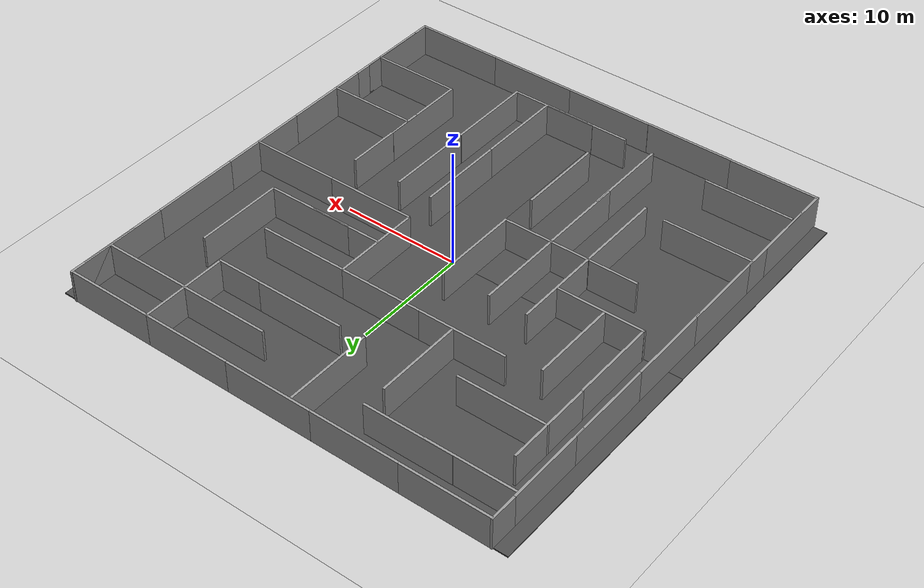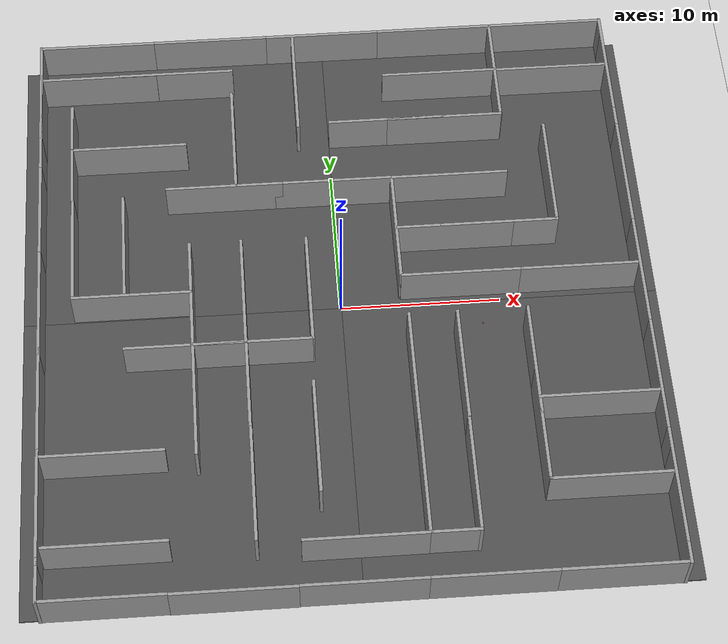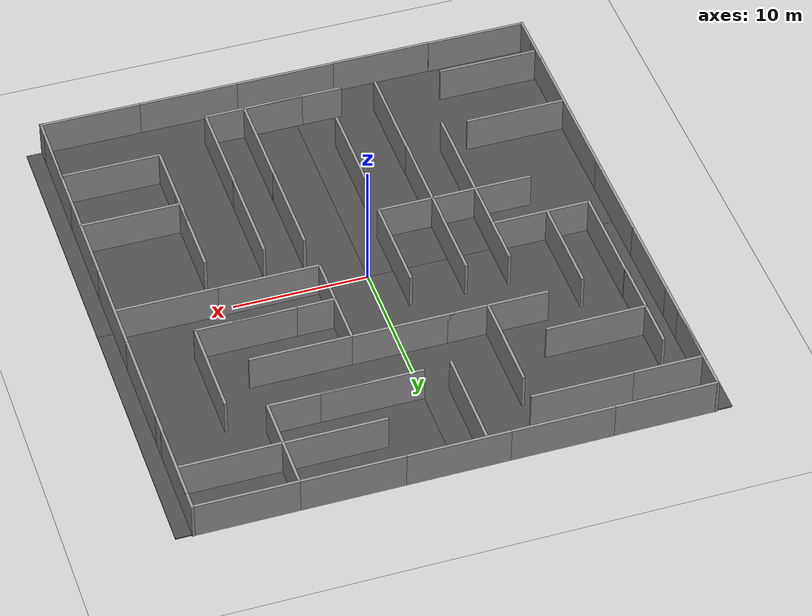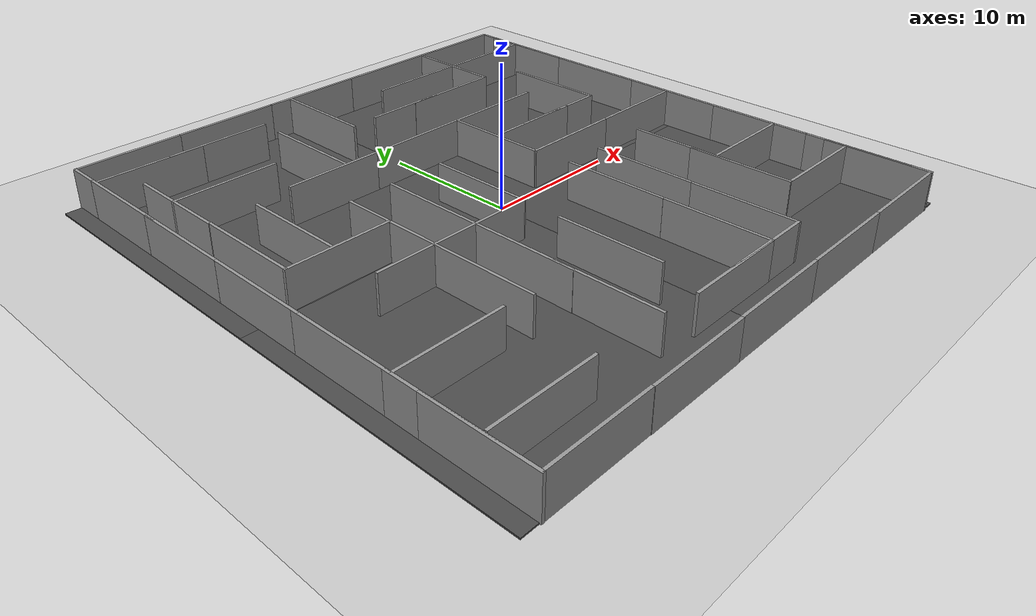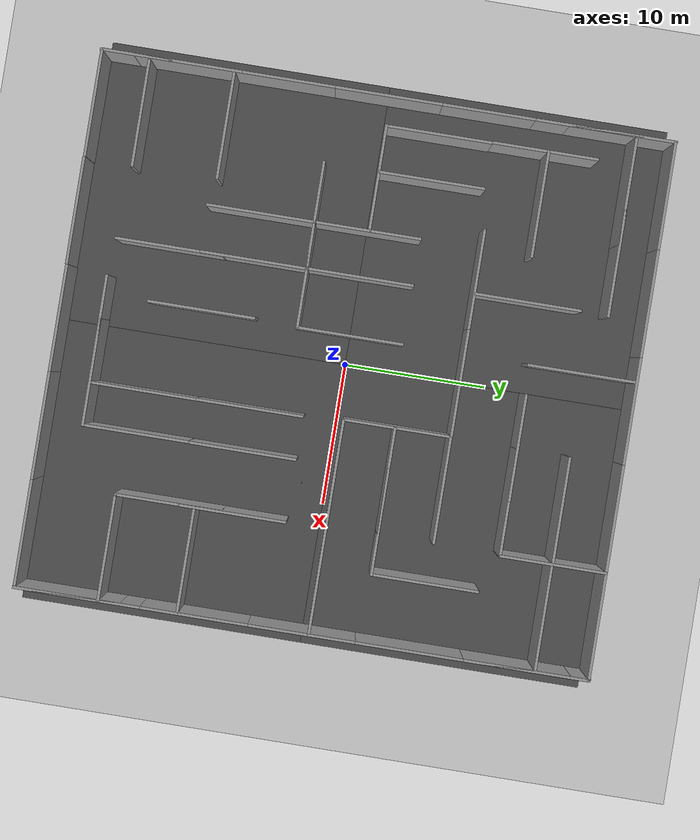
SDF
<sdf version="1.6">
 <world name="default">
  <light name="sun" type="directional">
   <pose>0 0 10 0 -0 0</pose>
   <diffuse>0.8 0.8 0.8 1</diffuse>
   <specular>0.2 0.2 0.2 1</specular>
   <attenuation>
    <range>1000</range>
    <constant>0.9</constant>
    <linear>0.01</linear>
    <quadratic>0.001</quadratic>
   </attenuation>
   <direction>-0.5 0.1 -0.9</direction>
  </light>
  <model name="ground_plane">
   <static>1</static>
   <link name="link">
    <collision name="collision">
     <geometry><plane><normal>0 0 1</normal><size>100 100</size></plane></geometry>
     <surface><friction><ode><mu>100</mu><mu2>50</mu2></ode></friction></surface>
    </collision>
    <visual name="visual">
     <cast_shadows>0</cast_shadows>
     <geometry><plane><normal>0 0 1</normal><size>100 100</size></plane></geometry>
     <material>
      <script><uri>file://media/materials/scripts/gazebo.material</uri><name>Gazebo/Grey</name></script>
     </material>
    </visual>
   </link>
  </model>
  <gravity>0 0 -9.8</gravity>
  <magnetic_field>6e-06 2.3e-05 -4.2e-05</magnetic_field>
  <atmosphere type="adiabatic"/>
  <physics name="default_physics" default="0" type="ode">
   <max_step_size>0.001</max_step_size>
   <real_time_factor>1</real_time_factor>
   <real_time_update_rate>1000</real_time_update_rate>
  </physics>
  <scene><ambient>0.4 0.4 0.4 1</ambient><background>0.7 0.7 0.7 1</background><shadows>1</shadows></scene>
  <audio><device>default</device></audio>
  <spherical_coordinates>
   <surface_model>EARTH_WGS84</surface_model>
   <latitude_deg>0</latitude_deg>
   <longitude_deg>0</longitude_deg>
   <elevation>0</elevation>
   <heading_deg>0</heading_deg>
  </spherical_coordinates>
  <model name="asphalt_plane">
   <static>1</static>
   <link name="link">
    <collision name="collision"><geometry><box><size>20 20 0.1</size></box></geometry></collision>
    <visual name="visual">
     <cast_shadows>0</cast_shadows>
     <geometry><box><size>20 20 0.1</size></box></geometry>
     <material>
      <script>
       <uri>model://asphalt_plane/materials/scripts</uri>
       <uri>model://asphalt_plane/materials/textures</uri>
       <name>vrc/asphalt</name>
      </script>
     </material>
    </visual>
   </link>
   <pose>10 -10 0 0 -0 0</pose>
  </model>
  <model name="asphalt_plane_clone">
   <static>1</static>
   <link name="link">
    <collision name="collision"><geometry><box><size>20 20 0.1</size></box></geometry></collision>
    <visual name="visual">
     <cast_shadows>0</cast_shadows>
     <geometry><box><size>20 20 0.1</size></box></geometry>
     <material>
      <script>
       <uri>model://asphalt_plane/materials/scripts</uri>
       <uri>model://asphalt_plane/materials/textures</uri>
       <name>vrc/asphalt</name>
      </script>
     </material>
    </visual>
   </link>
   <pose>10 10 0 0 -0 0</pose>
  </model>
  <model name="asphalt_plane_clone_0">
   <static>1</static>
   <link name="link">
    <collision name="collision"><geometry><box><size>20 20 0.1</size></box></geometry></collision>
    <visual name="visual">
     <cast_shadows>0</cast_shadows>
     <geometry><box><size>20 20 0.1</size></box></geometry>
     <material>
      <script>
       <uri>model://asphalt_plane/materials/scripts</uri>
       <uri>model://asphalt_plane/materials/textures</uri>
       <name>vrc/asphalt</name>
      </script>
     </material>
    </visual>
   </link>
   <pose>-10 10 0 0 -0 0</pose>
  </model>
  <model name="asphalt_plane_clone_1">
   <static>1</static>
   <link name="link">
    <collision name="collision"><geometry><box><size>20 20 0.1</size></box></geometry></collision>
    <visual name="visual">
     <cast_shadows>0</cast_shadows>
     <geometry><box><size>20 20 0.1</size></box></geometry>
     <material>
      <script>
       <uri>model://asphalt_plane/materials/scripts</uri>
       <uri>model://asphalt_plane/materials/textures</uri>
       <name>vrc/asphalt</name>
      </script>
     </material>
    </visual>
   </link>
   <pose>-10 -10 0 0 -0 0</pose>
  </model>
  <model name="grey_wall">
   <static>1</static>
   <link name="link">
    <pose>0 0 1.4 0 -0 0</pose>
    <collision name="collision"><geometry><box><size>7.5 0.2 2.8</size></box></geometry></collision>
    <visual name="visual">
     <cast_shadows>0</cast_shadows>
     <geometry><box><size>7.5 0.2 2.8</size></box></geometry>
     <material>
      <script>
       <uri>model://grey_wall/materials/scripts</uri>
       <uri>model://grey_wall/materials/textures</uri>
       <name>vrc/grey_wall</name>
      </script>
     </material>
    </visual>
   </link>
   <pose>0 20 0 0 -0 0</pose>
  </model>
  <model name="grey_wall_0">
   <static>1</static>
   <link name="link">
    <pose>0 0 1.4 0 -0 0</pose>
    <collision name="collision"><geometry><box><size>7.5 0.2 2.8</size></box></geometry></collision>
    <visual name="visual">
     <cast_shadows>0</cast_shadows>
     <geometry><box><size>7.5 0.2 2.8</size></box></geometry>
     <material>
      <script>
       <uri>model://grey_wall/materials/scripts</uri>
       <uri>model://grey_wall/materials/textures</uri>
       <name>vrc/grey_wall</name>
      </script>
     </material>
    </visual>
   </link>
   <pose>-7.5 20 0 0 -0 0</pose>
  </model>
  <model name="grey_wall_0_clone">
   <static>1</static>
   <link name="link">
    <pose>0 0 1.4 0 -0 0</pose>
    <collision name="collision"><geometry><box><size>7.5 0.2 2.8</size></box></geometry></collision>
    <visual name="visual">
     <cast_shadows>0</cast_shadows>
     <geometry><box><size>7.5 0.2 2.8</size></box></geometry>
     <material>
      <script>
       <uri>model://grey_wall/materials/scripts</uri>
       <uri>model://grey_wall/materials/textures</uri>
       <name>vrc/grey_wall</name>
      </script>
     </material>
    </visual>
   </link>
   <pose>-15 20 0 0 -0 0</pose>
  </model>
  <model name="grey_wall_0_clone_0">
   <static>1</static>
   <link name="link">
    <pose>0 0 1.4 0 -0 0</pose>
    <collision name="collision"><geometry><box><size>7.5 0.2 2.8</size></box></geometry></collision>
    <visual name="visual">
     <cast_shadows>0</cast_shadows>
     <geometry><box><size>7.5 0.2 2.8</size></box></geometry>
     <material>
      <script>
       <uri>model://grey_wall/materials/scripts</uri>
       <uri>model://grey_wall/materials/textures</uri>
       <name>vrc/grey_wall</name>
      </script>
     </material>
    </visual>
   </link>
   <pose>7.5 20 0 0 -0 0</pose>
  </model>
  <model name="grey_wall_0_clone_1">
   <static>1</static>
   <link name="link">
    <pose>0 0 1.4 0 -0 0</pose>
    <collision name="collision"><geometry><box><size>7.5 0.2 2.8</size></box></geometry></collision>
    <visual name="visual">
     <cast_shadows>0</cast_shadows>
     <geometry><box><size>7.5 0.2 2.8</size></box></geometry>
     <material>
      <script>
       <uri>model://grey_wall/materials/scripts</uri>
       <uri>model://grey_wall/materials/textures</uri>
       <name>vrc/grey_wall</name>
      </script>
     </material>
    </visual>
   </link>
   <pose>15 20 0 0 -0 0</pose>
  </model>
  <model name="grey_wall_0_clone_1_clone">
   <static>1</static>
   <link name="link">
    <pose>0 0 1.4 0 -0 0</pose>
    <collision name="collision"><geometry><box><size>7.5 0.2 2.8</size></box></geometry></collision>
    <visual name="visual">
     <cast_shadows>0</cast_shadows>
     <geometry><box><size>7.5 0.2 2.8</size></box></geometry>
     <material>
      <script>
       <uri>model://grey_wall/materials/scripts</uri>
       <uri>model://grey_wall/materials/textures</uri>
       <name>vrc/grey_wall</name>
      </script>
     </material>
    </visual>
   </link>
   <pose>0 -20 0 0 -0 0</pose>
  </model>
  <model name="grey_wall_0_clone_1_clone_clone">
   <static>1</static>
   <link name="link">
    <pose>0 0 1.4 0 -0 0</pose>
    <collision name="collision"><geometry><box><size>7.5 0.2 2.8</size></box></geometry></collision>
    <visual name="visual">
     <cast_shadows>0</cast_shadows>
     <geometry><box><size>7.5 0.2 2.8</size></box></geometry>
     <material>
      <script>
       <uri>model://grey_wall/materials/scripts</uri>
       <uri>model://grey_wall/materials/textures</uri>
       <name>vrc/grey_wall</name>
      </script>
     </material>
    </visual>
   </link>
   <pose>7.5 -20 0 0 -0 0</pose>
  </model>
  <model name="grey_wall_0_clone_1_clone_clone_0">
   <static>1</static>
   <link name="link">
    <pose>0 0 1.4 0 -0 0</pose>
    <collision name="collision"><geometry><box><size>7.5 0.2 2.8</size></box></geometry></collision>
    <visual name="visual">
     <cast_shadows>0</cast_shadows>
     <geometry><box><size>7.5 0.2 2.8</size></box></geometry>
     <material>
      <script>
       <uri>model://grey_wall/materials/scripts</uri>
       <uri>model://grey_wall/materials/textures</uri>
       <name>vrc/grey_wall</name>
      </script>
     </material>
    </visual>
   </link>
   <pose>15 -20 0 0 -0 0</pose>
  </model>
  <model name="grey_wall_0_clone_1_clone_clone_1">
   <static>1</static>
   <link name="link">
    <pose>0 0 1.4 0 -0 0</pose>
    <collision name="collision"><geometry><box><size>7.5 0.2 2.8</size></box></geometry></collision>
    <visual name="visual">
     <cast_shadows>0</cast_shadows>
     <geometry><box><size>7.5 0.2 2.8</size></box></geometry>
     <material>
      <script>
       <uri>model://grey_wall/materials/scripts</uri>
       <uri>model://grey_wall/materials/textures</uri>
       <name>vrc/grey_wall</name>
      </script>
     </material>
    </visual>
   </link>
   <pose>-7.5 -20.0279 0 0 -0 0</pose>
  </model>
  <model name="grey_wall_0_clone_1_clone_clone_2">
   <static>1</static>
   <link name="link">
    <pose>0 0 1.4 0 -0 0</pose>
    <collision name="collision"><geometry><box><size>7.5 0.2 2.8</size></box></geometry></collision>
    <visual name="visual">
     <cast_shadows>0</cast_shadows>
     <geometry><box><size>7.5 0.2 2.8</size></box></geometry>
     <material>
      <script>
       <uri>model://grey_wall/materials/scripts</uri>
       <uri>model://grey_wall/materials/textures</uri>
       <name>vrc/grey_wall</name>
      </script>
     </material>
    </visual>
   </link>
   <pose>-15 -20 0 0 -0 0</pose>
  </model>
  <model name="grey_wall_0_clone_1_clone_clone_3">
   <static>1</static>
   <link name="link">
    <pose>0 0 1.4 0 -0 0</pose>
    <collision name="collision"><geometry><box><size>7.5 0.2 2.8</size></box></geometry></collision>
    <visual name="visual">
     <cast_shadows>0</cast_shadows>
     <geometry><box><size>7.5 0.2 2.8</size></box></geometry>
     <material>
      <script>
       <uri>model://grey_wall/materials/scripts</uri>
       <uri>model://grey_wall/materials/textures</uri>
       <name>vrc/grey_wall</name>
      </script>
     </material>
    </visual>
   </link>
   <pose>-18.75 0 0 0 -0 1.5708</pose>
  </model>
  <model name="grey_wall_0_clone_1_clone_clone_3_clone">
   <static>1</static>
   <link name="link">
    <pose>0 0 1.4 0 -0 0</pose>
    <collision name="collision"><geometry><box><size>7.5 0.2 2.8</size></box></geometry></collision>
    <visual name="visual">
     <cast_shadows>0</cast_shadows>
     <geometry><box><size>7.5 0.2 2.8</size></box></geometry>
     <material>
      <script>
       <uri>model://grey_wall/materials/scripts</uri>
       <uri>model://grey_wall/materials/textures</uri>
       <name>vrc/grey_wall</name>
      </script>
     </material>
    </visual>
   </link>
   <pose>-18.75 -7 0 0 -0 1.5708</pose>
  </model>
  <model name="grey_wall_0_clone_1_clone_clone_3_clone_0">
   <static>1</static>
   <link name="link">
    <pose>0 0 1.4 0 -0 0</pose>
    <collision name="collision"><geometry><box><size>7.5 0.2 2.8</size></box></geometry></collision>
    <visual name="visual">
     <cast_shadows>0</cast_shadows>
     <geometry><box><size>7.5 0.2 2.8</size></box></geometry>
     <material>
      <script>
       <uri>model://grey_wall/materials/scripts</uri>
       <uri>model://grey_wall/materials/textures</uri>
       <name>vrc/grey_wall</name>
      </script>
     </material>
    </visual>
   </link>
   <pose>-18.75 -14 0 0 -0 1.5708</pose>
  </model>
  <model name="grey_wall_0_clone_1_clone_clone_3_clone_1">
   <static>1</static>
   <link name="link">
    <pose>0 0 1.4 0 -0 0</pose>
    <collision name="collision"><geometry><box><size>7.5 0.2 2.8</size></box></geometry></collision>
    <visual name="visual">
     <cast_shadows>0</cast_shadows>
     <geometry><box><size>7.5 0.2 2.8</size></box></geometry>
     <material>
      <script>
       <uri>model://grey_wall/materials/scripts</uri>
       <uri>model://grey_wall/materials/textures</uri>
       <name>vrc/grey_wall</name>
      </script>
     </material>
    </visual>
   </link>
   <pose>-18.7504 7.41604 0 0 -0 1.5708</pose>
  </model>
  <model name="grey_wall_0_clone_1_clone_clone_3_clone_2">
   <static>1</static>
   <link name="link">
    <pose>0 0 1.4 0 -0 0</pose>
    <collision name="collision"><geometry><box><size>7.5 0.2 2.8</size></box></geometry></collision>
    <visual name="visual">
     <cast_shadows>0</cast_shadows>
     <geometry><box><size>7.5 0.2 2.8</size></box></geometry>
     <material>
      <script>
       <uri>model://grey_wall/materials/scripts</uri>
       <uri>model://grey_wall/materials/textures</uri>
       <name>vrc/grey_wall</name>
      </script>
     </material>
    </visual>
   </link>
   <pose>-18.75 14 0 0 -0 1.5708</pose>
  </model>
  <model name="grey_wall_0_clone_1_clone_clone_3_clone_0_clone">
   <static>1</static>
   <link name="link">
    <pose>0 0 1.4 0 -0 0</pose>
    <collision name="collision"><geometry><box><size>7.5 0.2 2.8</size></box></geometry></collision>
    <visual name="visual">
     <cast_shadows>0</cast_shadows>
     <geometry><box><size>7.5 0.2 2.8</size></box></geometry>
     <material>
      <script>
       <uri>model://grey_wall/materials/scripts</uri>
       <uri>model://grey_wall/materials/textures</uri>
       <name>vrc/grey_wall</name>
      </script>
     </material>
    </visual>
   </link>
   <pose>-18.75 -16.375 0 0 -0 1.5708</pose>
  </model>
  <model name="grey_wall_0_clone_1_clone_clone_3_clone_2_clone">
   <static>1</static>
   <link name="link">
    <pose>0 0 1.4 0 -0 0</pose>
    <collision name="collision"><geometry><box><size>7.5 0.2 2.8</size></box></geometry></collision>
    <visual name="visual">
     <cast_shadows>0</cast_shadows>
     <geometry><box><size>7.5 0.2 2.8</size></box></geometry>
     <material>
      <script>
       <uri>model://grey_wall/materials/scripts</uri>
       <uri>model://grey_wall/materials/textures</uri>
       <name>vrc/grey_wall</name>
      </script>
     </material>
    </visual>
   </link>
   <pose>-18.75 16.375 0 0 -0 1.5708</pose>
  </model>
  <light name="user_point_light_0" type="point">
   <pose>0.377107 0.590548 1 0 -0 0</pose>
   <diffuse>0.5 0.5 0.5 1</diffuse>
   <specular>0.1 0.1 0.1 1</specular>
   <attenuation>
    <range>20</range>
    <constant>0.5</constant>
    <linear>0.01</linear>
    <quadratic>0.001</quadratic>
   </attenuation>
   <cast_shadows>0</cast_shadows>
   <direction>0 0 -1</direction>
  </light>
  <model name="grey_wall_0_clone_1_clone_clone_3_clone_2_clone_clone">
   <static>1</static>
   <link name="link">
    <pose>0 0 1.4 0 -0 0</pose>
    <collision name="collision"><geometry><box><size>7.5 0.2 2.8</size></box></geometry></collision>
    <visual name="visual">
     <cast_shadows>0</cast_shadows>
     <geometry><box><size>7.5 0.2 2.8</size></box></geometry>
     <material>
      <script>
       <uri>model://grey_wall/materials/scripts</uri>
       <uri>model://grey_wall/materials/textures</uri>
       <name>vrc/grey_wall</name>
      </script>
     </material>
    </visual>
   </link>
   <pose>18.75 16.375 0 0 -0 1.5708</pose>
  </model>
  <model name="grey_wall_0_clone_1_clone_clone_3_clone_2_clone_clone_0">
   <static>1</static>
   <link name="link">
    <pose>0 0 1.4 0 -0 0</pose>
    <collision name="collision"><geometry><box><size>7.5 0.2 2.8</size></box></geometry></collision>
    <visual name="visual">
     <cast_shadows>0</cast_shadows>
     <geometry><box><size>7.5 0.2 2.8</size></box></geometry>
     <material>
      <script>
       <uri>model://grey_wall/materials/scripts</uri>
       <uri>model://grey_wall/materials/textures</uri>
       <name>vrc/grey_wall</name>
      </script>
     </material>
    </visual>
   </link>
   <pose>18.75 0 0 0 -0 1.5708</pose>
  </model>
  <model name="grey_wall_0_clone_1_clone_clone_3_clone_2_clone_clone_1">
   <static>1</static>
   <link name="link">
    <pose>0 0 1.4 0 -0 0</pose>
    <collision name="collision"><geometry><box><size>7.5 0.2 2.8</size></box></geometry></collision>
    <visual name="visual">
     <cast_shadows>0</cast_shadows>
     <geometry><box><size>7.5 0.2 2.8</size></box></geometry>
     <material>
      <script>
       <uri>model://grey_wall/materials/scripts</uri>
       <uri>model://grey_wall/materials/textures</uri>
       <name>vrc/grey_wall</name>
      </script>
     </material>
    </visual>
   </link>
   <pose>18.75 7.5 0 0 -0 1.5708</pose>
  </model>
  <model name="grey_wall_0_clone_1_clone_clone_3_clone_2_clone_clone_2">
   <static>1</static>
   <link name="link">
    <pose>0 0 1.4 0 -0 0</pose>
    <collision name="collision"><geometry><box><size>7.5 0.2 2.8</size></box></geometry></collision>
    <visual name="visual">
     <cast_shadows>0</cast_shadows>
     <geometry><box><size>7.5 0.2 2.8</size></box></geometry>
     <material>
      <script>
       <uri>model://grey_wall/materials/scripts</uri>
       <uri>model://grey_wall/materials/textures</uri>
       <name>vrc/grey_wall</name>
      </script>
     </material>
    </visual>
   </link>
   <pose>18.75 15 0 0 -0 1.5708</pose>
  </model>
  <model name="grey_wall_0_clone_1_clone_clone_3_clone_2_clone_clone_3">
   <static>1</static>
   <link name="link">
    <pose>0 0 1.4 0 -0 0</pose>
    <collision name="collision"><geometry><box><size>7.5 0.2 2.8</size></box></geometry></collision>
    <visual name="visual">
     <cast_shadows>0</cast_shadows>
     <geometry><box><size>7.5 0.2 2.8</size></box></geometry>
     <material>
      <script>
       <uri>model://grey_wall/materials/scripts</uri>
       <uri>model://grey_wall/materials/textures</uri>
       <name>vrc/grey_wall</name>
      </script>
     </material>
    </visual>
   </link>
   <pose>18.75 -7.5 0 0 -0 1.5708</pose>
  </model>
  <model name="grey_wall_0_clone_1_clone_clone_3_clone_2_clone_clone_4">
   <static>1</static>
   <link name="link">
    <pose>0 0 1.4 0 -0 0</pose>
    <collision name="collision"><geometry><box><size>7.5 0.2 2.8</size></box></geometry></collision>
    <visual name="visual">
     <cast_shadows>0</cast_shadows>
     <geometry><box><size>7.5 0.2 2.8</size></box></geometry>
     <material>
      <script>
       <uri>model://grey_wall/materials/scripts</uri>
       <uri>model://grey_wall/materials/textures</uri>
       <name>vrc/grey_wall</name>
      </script>
     </material>
    </visual>
   </link>
   <pose>18.75 -15 0 0 -0 1.5708</pose>
  </model>
  <model name="grey_wall_0_clone_1_clone_clone_3_clone_2_clone_clone_5">
   <static>1</static>
   <link name="link">
    <pose>0 0 1.4 0 -0 0</pose>
    <collision name="collision"><geometry><box><size>7.5 0.2 2.8</size></box></geometry></collision>
    <visual name="visual">
     <cast_shadows>0</cast_shadows>
     <geometry><box><size>7.5 0.2 2.8</size></box></geometry>
     <material>
      <script>
       <uri>model://grey_wall/materials/scripts</uri>
       <uri>model://grey_wall/materials/textures</uri>
       <name>vrc/grey_wall</name>
      </script>
     </material>
    </visual>
   </link>
   <pose>18.75 -16.375 0 0 -0 1.5708</pose>
  </model>
  <model name="grey_wall_0_clone_1_clone_clone_3_clone_0_clone_0">
   <static>1</static>
   <link name="link">
    <pose>0 0 1.4 0 -0 0</pose>
    <collision name="collision"><geometry><box><size>7.5 0.2 2.8</size></box></geometry></collision>
    <visual name="visual">
     <cast_shadows>0</cast_shadows>
     <geometry><box><size>7.5 0.2 2.8</size></box></geometry>
     <material>
      <script>
       <uri>model://grey_wall/materials/scripts</uri>
       <uri>model://grey_wall/materials/textures</uri>
       <name>vrc/grey_wall</name>
      </script>
     </material>
    </visual>
   </link>
   <pose>-2 0 0 0 -0 1.5708</pose>
  </model>
  <model name="grey_wall_0_clone_1_clone_clone_3_clone_0_clone_0_clone">
   <static>1</static>
   <link name="link">
    <pose>0 0 1.4 0 -0 0</pose>
    <collision name="collision"><geometry><box><size>7.5 0.2 2.8</size></box></geometry></collision>
    <visual name="visual">
     <cast_shadows>0</cast_shadows>
     <geometry><box><size>7.5 0.2 2.8</size></box></geometry>
     <material>
      <script>
       <uri>model://grey_wall/materials/scripts</uri>
       <uri>model://grey_wall/materials/textures</uri>
       <name>vrc/grey_wall</name>
      </script>
     </material>
    </visual>
   </link>
   <pose>4 -6 0 0 -0 1.5708</pose>
  </model>
  <model name="grey_wall_0_clone_1_clone_clone_3_clone_0_clone_0_clone_0">
   <static>1</static>
   <link name="link">
    <pose>0 0 1.4 0 -0 0</pose>
    <collision name="collision"><geometry><box><size>7.5 0.2 2.8</size></box></geometry></collision>
    <visual name="visual">
     <cast_shadows>0</cast_shadows>
     <geometry><box><size>7.5 0.2 2.8</size></box></geometry>
     <material>
      <script>
       <uri>model://grey_wall/materials/scripts</uri>
       <uri>model://grey_wall/materials/textures</uri>
       <name>vrc/grey_wall</name>
      </script>
     </material>
    </visual>
   </link>
   <pose>3.75 4.25 0 0 -0 1.5708</pose>
  </model>
  <model name="grey_wall_0_clone_0_clone">
   <static>1</static>
   <link name="link">
    <pose>0 0 1.4 0 -0 0</pose>
    <collision name="collision"><geometry><box><size>7.5 0.2 2.8</size></box></geometry></collision>
    <visual name="visual">
     <cast_shadows>0</cast_shadows>
     <geometry><box><size>7.5 0.2 2.8</size></box></geometry>
     <material>
      <script>
       <uri>model://grey_wall/materials/scripts</uri>
       <uri>model://grey_wall/materials/textures</uri>
       <name>vrc/grey_wall</name>
      </script>
     </material>
    </visual>
   </link>
   <pose>0 8 0 0 -0 0</pose>
  </model>
  <model name="grey_wall_0_clone_0_clone_0">
   <static>1</static>
   <link name="link">
    <pose>0 0 1.4 0 -0 0</pose>
    <collision name="collision"><geometry><box><size>7.5 0.2 2.8</size></box></geometry></collision>
    <visual name="visual">
     <cast_shadows>0</cast_shadows>
     <geometry><box><size>7.5 0.2 2.8</size></box></geometry>
     <material>
      <script>
       <uri>model://grey_wall/materials/scripts</uri>
       <uri>model://grey_wall/materials/textures</uri>
       <name>vrc/grey_wall</name>
      </script>
     </material>
    </visual>
   </link>
   <pose>-7 8 0 0 -0 0</pose>
  </model>
  <model name="grey_wall_0_clone_0_clone_1">
   <static>1</static>
   <link name="link">
    <pose>0 0 1.4 0 -0 0</pose>
    <collision name="collision"><geometry><box><size>7.5 0.2 2.8</size></box></geometry></collision>
    <visual name="visual">
     <cast_shadows>0</cast_shadows>
     <geometry><box><size>7.5 0.2 2.8</size></box></geometry>
     <material>
      <script>
       <uri>model://grey_wall/materials/scripts</uri>
       <uri>model://grey_wall/materials/textures</uri>
       <name>vrc/grey_wall</name>
      </script>
     </material>
    </visual>
   </link>
   <pose>7.5 0.5 0 0 -0 0</pose>
  </model>
  <model name="grey_wall_0_clone_1_clone_clone_3_clone_2_clone_clone_0_clone">
   <static>1</static>
   <link name="link">
    <pose>0 0 1.4 0 -0 0</pose>
    <collision name="collision"><geometry><box><size>7.5 0.2 2.8</size></box></geometry></collision>
    <visual name="visual">
     <cast_shadows>0</cast_shadows>
     <geometry><box><size>7.5 0.2 2.8</size></box></geometry>
     <material>
      <script>
       <uri>model://grey_wall/materials/scripts</uri>
       <uri>model://grey_wall/materials/textures</uri>
       <name>vrc/grey_wall</name>
      </script>
     </material>
    </visual>
   </link>
   <pose>7 -6 0 0 -0 1.5708</pose>
  </model>
  <model name="grey_wall_0_clone_1_clone_clone_3_clone_2_clone_clone_0_clone_0">
   <static>1</static>
   <link name="link">
    <pose>0 0 1.4 0 -0 0</pose>
    <collision name="collision"><geometry><box><size>7.5 0.2 2.8</size></box></geometry></collision>
    <visual name="visual">
     <cast_shadows>0</cast_shadows>
     <geometry><box><size>7.5 0.2 2.8</size></box></geometry>
     <material>
      <script>
       <uri>model://grey_wall/materials/scripts</uri>
       <uri>model://grey_wall/materials/textures</uri>
       <name>vrc/grey_wall</name>
      </script>
     </material>
    </visual>
   </link>
   <pose>11.3625 -6 0 0 -0 1.5708</pose>
  </model>
  <model name="grey_wall_0_clone_1_clone_0">
   <static>1</static>
   <link name="link">
    <pose>0 0 1.4 0 -0 0</pose>
    <collision name="collision"><geometry><box><size>7.5 0.2 2.8</size></box></geometry></collision>
    <visual name="visual">
     <cast_shadows>0</cast_shadows>
     <geometry><box><size>7.5 0.2 2.8</size></box></geometry>
     <material>
      <script>
       <uri>model://grey_wall/materials/scripts</uri>
       <uri>model://grey_wall/materials/textures</uri>
       <name>vrc/grey_wall</name>
      </script>
     </material>
    </visual>
   </link>
   <pose>15 0.5 0 0 -0 0</pose>
  </model>
  <model name="grey_wall_0_clone_1_clone_clone_3_clone_0_clone_0_clone_1">
   <static>1</static>
   <link name="link">
    <pose>0 0 1.4 0 -0 0</pose>
    <collision name="collision"><geometry><box><size>7.5 0.2 2.8</size></box></geometry></collision>
    <visual name="visual">
     <cast_shadows>0</cast_shadows>
     <geometry><box><size>7.5 0.2 2.8</size></box></geometry>
     <material>
      <script>
       <uri>model://grey_wall/materials/scripts</uri>
       <uri>model://grey_wall/materials/textures</uri>
       <name>vrc/grey_wall</name>
      </script>
     </material>
    </visual>
   </link>
   <pose>6.98294 -13.5074 0 0 -0 1.5708</pose>
  </model>
  <model name="grey_wall_0_clone_1_clone_clone_3_clone_0_clone_0_clone_2">
   <static>1</static>
   <link name="link">
    <pose>0 0 1.4 0 -0 0</pose>
    <collision name="collision"><geometry><box><size>7.5 0.2 2.8</size></box></geometry></collision>
    <visual name="visual">
     <cast_shadows>0</cast_shadows>
     <geometry><box><size>7.5 0.2 2.8</size></box></geometry>
     <material>
      <script>
       <uri>model://grey_wall/materials/scripts</uri>
       <uri>model://grey_wall/materials/textures</uri>
       <name>vrc/grey_wall</name>
      </script>
     </material>
    </visual>
   </link>
   <pose>4.0105 -13.4927 0 0 -0 1.5708</pose>
  </model>
  <model name="grey_wall_0_clone_1_clone_clone_3_clone_0_clone_0_clone_3">
   <static>1</static>
   <link name="link">
    <pose>0 0 1.4 0 -0 0</pose>
    <collision name="collision"><geometry><box><size>7.5 0.2 2.8</size></box></geometry></collision>
    <visual name="visual">
     <cast_shadows>0</cast_shadows>
     <geometry><box><size>7.5 0.2 2.8</size></box></geometry>
     <material>
      <script>
       <uri>model://grey_wall/materials/scripts</uri>
       <uri>model://grey_wall/materials/textures</uri>
       <name>vrc/grey_wall</name>
      </script>
     </material>
    </visual>
   </link>
   <pose>11.3469 -10.4879 0 0 -0 1.5708</pose>
  </model>
  <model name="grey_wall_0_clone_1_clone_0_clone">
   <static>1</static>
   <link name="link">
    <pose>0 0 1.4 0 -0 0</pose>
    <collision name="collision"><geometry><box><size>7.5 0.2 2.8</size></box></geometry></collision>
    <visual name="visual">
     <cast_shadows>0</cast_shadows>
     <geometry><box><size>7.5 0.2 2.8</size></box></geometry>
     <material>
      <script>
       <uri>model://grey_wall/materials/scripts</uri>
       <uri>model://grey_wall/materials/textures</uri>
       <name>vrc/grey_wall</name>
      </script>
     </material>
    </visual>
   </link>
   <pose>15 -8.66916 0 0 -0 0</pose>
  </model>
  <model name="grey_wall_0_clone_1_clone_0_clone_0">
   <static>1</static>
   <link name="link">
    <pose>0 0 1.4 0 -0 0</pose>
    <collision name="collision"><geometry><box><size>7.5 0.2 2.8</size></box></geometry></collision>
    <visual name="visual">
     <cast_shadows>0</cast_shadows>
     <geometry><box><size>7.5 0.2 2.8</size></box></geometry>
     <material>
      <script>
       <uri>model://grey_wall/materials/scripts</uri>
       <uri>model://grey_wall/materials/textures</uri>
       <name>vrc/grey_wall</name>
      </script>
     </material>
    </visual>
   </link>
   <pose>15.0358 -14.1705 0 0 -0 0</pose>
  </model>
  <model name="grey_wall_0_clone_1_clone_0_clone_1">
   <static>1</static>
   <link name="link">
    <pose>0 0 1.4 0 -0 0</pose>
    <collision name="collision"><geometry><box><size>7.5 0.2 2.8</size></box></geometry></collision>
    <visual name="visual">
     <cast_shadows>0</cast_shadows>
     <geometry><box><size>7.5 0.2 2.8</size></box></geometry>
     <material>
      <script>
       <uri>model://grey_wall/materials/scripts</uri>
       <uri>model://grey_wall/materials/textures</uri>
       <name>vrc/grey_wall</name>
      </script>
     </material>
    </visual>
   </link>
   <pose>-5.73771 -3.66191 0 0 -0 0</pose>
  </model>
  <model name="grey_wall_0_clone_1_clone_clone_3_clone_0_clone_0_clone_4">
   <static>1</static>
   <link name="link">
    <pose>0 0 1.4 0 -0 0</pose>
    <collision name="collision"><geometry><box><size>7.5 0.2 2.8</size></box></geometry></collision>
    <visual name="visual">
     <cast_shadows>0</cast_shadows>
     <geometry><box><size>7.5 0.2 2.8</size></box></geometry>
     <material>
      <script>
       <uri>model://grey_wall/materials/scripts</uri>
       <uri>model://grey_wall/materials/textures</uri>
       <name>vrc/grey_wall</name>
      </script>
     </material>
    </visual>
   </link>
   <pose>-6.09062 -7.35569 0 0 -0 1.5708</pose>
  </model>
  <model name="grey_wall_0_clone_1_clone_clone_3_clone_0_clone_0_clone_5">
   <static>1</static>
   <link name="link">
    <pose>0 0 1.4 0 -0 0</pose>
    <collision name="collision"><geometry><box><size>7.5 0.2 2.8</size></box></geometry></collision>
    <visual name="visual">
     <cast_shadows>0</cast_shadows>
     <geometry><box><size>7.5 0.2 2.8</size></box></geometry>
     <material>
      <script>
       <uri>model://grey_wall/materials/scripts</uri>
       <uri>model://grey_wall/materials/textures</uri>
       <name>vrc/grey_wall</name>
      </script>
     </material>
    </visual>
   </link>
   <pose>-2.14639 -10.3679 0 0 -0 1.5708</pose>
  </model>
  <model name="grey_wall_0_clone_1_clone_0_clone_1_clone">
   <static>1</static>
   <link name="link">
    <pose>0 0 1.4 0 -0 0</pose>
    <collision name="collision"><geometry><box><size>7.5 0.2 2.8</size></box></geometry></collision>
    <visual name="visual">
     <cast_shadows>0</cast_shadows>
     <geometry><box><size>7.5 0.2 2.8</size></box></geometry>
     <material>
      <script>
       <uri>model://grey_wall/materials/scripts</uri>
       <uri>model://grey_wall/materials/textures</uri>
       <name>vrc/grey_wall</name>
      </script>
     </material>
    </visual>
   </link>
   <pose>0.27029 -17.1653 0 0 -0 0</pose>
  </model>
  <model name="grey_wall_0_clone_1_clone_clone_3_clone_0_clone_0_clone_4_clone">
   <static>1</static>
   <link name="link">
    <pose>0 0 1.4 0 -0 0</pose>
    <collision name="collision"><geometry><box><size>7.5 0.2 2.8</size></box></geometry></collision>
    <visual name="visual">
     <cast_shadows>0</cast_shadows>
     <geometry><box><size>7.5 0.2 2.8</size></box></geometry>
     <material>
      <script>
       <uri>model://grey_wall/materials/scripts</uri>
       <uri>model://grey_wall/materials/textures</uri>
       <name>vrc/grey_wall</name>
      </script>
     </material>
    </visual>
   </link>
   <pose>-6.07335 -13.2752 0 0 -0 1.5708</pose>
  </model>
  <model name="grey_wall_0_clone_1_clone_clone_3_clone_0_clone_0_clone_4_clone_0">
   <static>1</static>
   <link name="link">
    <pose>0 0 1.4 0 -0 0</pose>
    <collision name="collision"><geometry><box><size>7.5 0.2 2.8</size></box></geometry></collision>
    <visual name="visual">
     <cast_shadows>0</cast_shadows>
     <geometry><box><size>7.5 0.2 2.8</size></box></geometry>
     <material>
      <script>
       <uri>model://grey_wall/materials/scripts</uri>
       <uri>model://grey_wall/materials/textures</uri>
       <name>vrc/grey_wall</name>
      </script>
     </material>
    </visual>
   </link>
   <pose>-9.34959 -7.44161 0 0 -0 1.5708</pose>
  </model>
  <model name="grey_wall_0_clone_1_clone_0_clone_1_clone_0">
   <static>1</static>
   <link name="link">
    <pose>0 0 1.4 0 -0 0</pose>
    <collision name="collision"><geometry><box><size>7.5 0.2 2.8</size></box></geometry></collision>
    <visual name="visual">
     <cast_shadows>0</cast_shadows>
     <geometry><box><size>7.5 0.2 2.8</size></box></geometry>
     <material>
      <script>
       <uri>model://grey_wall/materials/scripts</uri>
       <uri>model://grey_wall/materials/textures</uri>
       <name>vrc/grey_wall</name>
      </script>
     </material>
    </visual>
   </link>
   <pose>-14.9157 -10.7614 0 0 -0 0</pose>
  </model>
  <model name="grey_wall_0_clone_1_clone_0_clone_1_clone_1">
   <static>1</static>
   <link name="link">
    <pose>0 0 1.4 0 -0 0</pose>
    <collision name="collision"><geometry><box><size>7.5 0.2 2.8</size></box></geometry></collision>
    <visual name="visual">
     <cast_shadows>0</cast_shadows>
     <geometry><box><size>7.5 0.2 2.8</size></box></geometry>
     <material>
      <script>
       <uri>model://grey_wall/materials/scripts</uri>
       <uri>model://grey_wall/materials/textures</uri>
       <name>vrc/grey_wall</name>
      </script>
     </material>
    </visual>
   </link>
   <pose>3.32552 -17.1515 0 0 -0 0</pose>
  </model>
  <model name="grey_wall_0_clone_1_clone_0_clone_1_clone_0_clone">
   <static>1</static>
   <link name="link">
    <pose>0 0 1.4 0 -0 0</pose>
    <collision name="collision"><geometry><box><size>7.5 0.2 2.8</size></box></geometry></collision>
    <visual name="visual">
     <cast_shadows>0</cast_shadows>
     <geometry><box><size>7.5 0.2 2.8</size></box></geometry>
     <material>
      <script>
       <uri>model://grey_wall/materials/scripts</uri>
       <uri>model://grey_wall/materials/textures</uri>
       <name>vrc/grey_wall</name>
      </script>
     </material>
    </visual>
   </link>
   <pose>-14.8258 -16.6713 0 0 -0 0</pose>
  </model>
  <model name="grey_wall_0_clone_1_clone_0_clone_1_clone_2">
   <static>1</static>
   <link name="link">
    <pose>0 0 1.4 0 -0 0</pose>
    <collision name="collision"><geometry><box><size>7.5 0.2 2.8</size></box></geometry></collision>
    <visual name="visual">
     <cast_shadows>0</cast_shadows>
     <geometry><box><size>7.5 0.2 2.8</size></box></geometry>
     <material>
      <script>
       <uri>model://grey_wall/materials/scripts</uri>
       <uri>model://grey_wall/materials/textures</uri>
       <name>vrc/grey_wall</name>
      </script>
     </material>
    </visual>
   </link>
   <pose>-13.0477 0.16945 0 0 -0 0</pose>
  </model>
  <model name="grey_wall_0_clone_1_clone_clone_3_clone_0_clone_0_clone_6">
   <static>1</static>
   <link name="link">
    <pose>0 0 1.4 0 -0 0</pose>
    <collision name="collision"><geometry><box><size>7.5 0.2 2.8</size></box></geometry></collision>
    <visual name="visual">
     <cast_shadows>0</cast_shadows>
     <geometry><box><size>7.5 0.2 2.8</size></box></geometry>
     <material>
      <script>
       <uri>model://grey_wall/materials/scripts</uri>
       <uri>model://grey_wall/materials/textures</uri>
       <name>vrc/grey_wall</name>
      </script>
     </material>
    </visual>
   </link>
   <pose>-6.10865 0.052874 0 0 -0 1.5708</pose>
  </model>
  <model name="grey_wall_0_clone_1_clone_0_clone_1_clone_2_clone">
   <static>1</static>
   <link name="link">
    <pose>0 0 1.4 0 -0 0</pose>
    <collision name="collision"><geometry><box><size>7.5 0.2 2.8</size></box></geometry></collision>
    <visual name="visual">
     <cast_shadows>0</cast_shadows>
     <geometry><box><size>7.5 0.2 2.8</size></box></geometry>
     <material>
      <script>
       <uri>model://grey_wall/materials/scripts</uri>
       <uri>model://grey_wall/materials/textures</uri>
       <name>vrc/grey_wall</name>
      </script>
     </material>
    </visual>
   </link>
   <pose>-9.85316 -3.67224 0 0 -0 0</pose>
  </model>
  <model name="grey_wall_0_clone_1_clone_clone_3_clone_0_clone_0_clone_6_clone">
   <static>1</static>
   <link name="link">
    <pose>0 0 1.4 0 -0 0</pose>
    <collision name="collision"><geometry><box><size>7.5 0.2 2.8</size></box></geometry></collision>
    <visual name="visual">
     <cast_shadows>0</cast_shadows>
     <geometry><box><size>7.5 0.2 2.8</size></box></geometry>
     <material>
      <script>
       <uri>model://grey_wall/materials/scripts</uri>
       <uri>model://grey_wall/materials/textures</uri>
       <name>vrc/grey_wall</name>
      </script>
     </material>
    </visual>
   </link>
   <pose>-9.35367 0.046738 0 0 -0 1.5708</pose>
  </model>
  <model name="grey_wall_0_clone_0_clone_clone">
   <static>1</static>
   <link name="link">
    <pose>0 0 1.4 0 -0 0</pose>
    <collision name="collision"><geometry><box><size>7.5 0.2 2.8</size></box></geometry></collision>
    <visual name="visual">
     <cast_shadows>0</cast_shadows>
     <geometry><box><size>7.5 0.2 2.8</size></box></geometry>
     <material>
      <script>
       <uri>model://grey_wall/materials/scripts</uri>
       <uri>model://grey_wall/materials/textures</uri>
       <name>vrc/grey_wall</name>
      </script>
     </material>
    </visual>
   </link>
   <pose>7.45873 4.09067 0 0 -0 0</pose>
  </model>
  <model name="grey_wall_0_clone_0_clone_clone_0">
   <static>1</static>
   <link name="link">
    <pose>0 0 1.4 0 -0 0</pose>
    <collision name="collision"><geometry><box><size>7.5 0.2 2.8</size></box></geometry></collision>
    <visual name="visual">
     <cast_shadows>0</cast_shadows>
     <geometry><box><size>7.5 0.2 2.8</size></box></geometry>
     <material>
      <script>
       <uri>model://grey_wall/materials/scripts</uri>
       <uri>model://grey_wall/materials/textures</uri>
       <name>vrc/grey_wall</name>
      </script>
     </material>
    </visual>
   </link>
   <pose>7.47623 7.97795 0 0 -0 0</pose>
  </model>
  <model name="grey_wall_0_clone_1_clone_clone_3_clone_0_clone_0_clone_7">
   <static>1</static>
   <link name="link">
    <pose>0 0 1.4 0 -0 0</pose>
    <collision name="collision"><geometry><box><size>7.5 0.2 2.8</size></box></geometry></collision>
    <visual name="visual">
     <cast_shadows>0</cast_shadows>
     <geometry><box><size>7.5 0.2 2.8</size></box></geometry>
     <material>
      <script>
       <uri>model://grey_wall/materials/scripts</uri>
       <uri>model://grey_wall/materials/textures</uri>
       <name>vrc/grey_wall</name>
      </script>
     </material>
    </visual>
   </link>
   <pose>13.9578 7.82807 0 0 -0 1.5708</pose>
  </model>
  <model name="grey_wall_0_clone_0_clone_clone_clone">
   <static>1</static>
   <link name="link">
    <pose>0 0 1.4 0 -0 0</pose>
    <collision name="collision"><geometry><box><size>7.5 0.2 2.8</size></box></geometry></collision>
    <visual name="visual">
     <cast_shadows>0</cast_shadows>
     <geometry><box><size>7.5 0.2 2.8</size></box></geometry>
     <material>
      <script>
       <uri>model://grey_wall/materials/scripts</uri>
       <uri>model://grey_wall/materials/textures</uri>
       <name>vrc/grey_wall</name>
      </script>
     </material>
    </visual>
   </link>
   <pose>10.2966 4.09229 0 0 -0 0</pose>
  </model>
  <model name="grey_wall_0_clone_0_clone_0_clone">
   <static>1</static>
   <link name="link">
    <pose>0 0 1.4 0 -0 0</pose>
    <collision name="collision"><geometry><box><size>7.5 0.2 2.8</size></box></geometry></collision>
    <visual name="visual">
     <cast_shadows>0</cast_shadows>
     <geometry><box><size>7.5 0.2 2.8</size></box></geometry>
     <material>
      <script>
       <uri>model://grey_wall/materials/scripts</uri>
       <uri>model://grey_wall/materials/textures</uri>
       <name>vrc/grey_wall</name>
      </script>
     </material>
    </visual>
   </link>
   <pose>14.9343 16.2496 0 0 -0 0</pose>
  </model>
  <model name="grey_wall_0_clone_1_clone_clone_3_clone_0_clone_0_clone_0_clone">
   <static>1</static>
   <link name="link">
    <pose>0 0 1.4 0 -0 0</pose>
    <collision name="collision"><geometry><box><size>7.5 0.2 2.8</size></box></geometry></collision>
    <visual name="visual">
     <cast_shadows>0</cast_shadows>
     <geometry><box><size>7.5 0.2 2.8</size></box></geometry>
     <material>
      <script>
       <uri>model://grey_wall/materials/scripts</uri>
       <uri>model://grey_wall/materials/textures</uri>
       <name>vrc/grey_wall</name>
      </script>
     </material>
    </visual>
   </link>
   <pose>11.2788 16.2818 0 0 -0 1.5708</pose>
  </model>
  <model name="grey_wall_0_clone_0_clone_0_clone_0">
   <static>1</static>
   <link name="link">
    <pose>0 0 1.4 0 -0 0</pose>
    <collision name="collision"><geometry><box><size>7.5 0.2 2.8</size></box></geometry></collision>
    <visual name="visual">
     <cast_shadows>0</cast_shadows>
     <geometry><box><size>7.5 0.2 2.8</size></box></geometry>
     <material>
      <script>
       <uri>model://grey_wall/materials/scripts</uri>
       <uri>model://grey_wall/materials/textures</uri>
       <name>vrc/grey_wall</name>
      </script>
     </material>
    </visual>
   </link>
   <pose>7.55028 16.2879 0 0 -0 0</pose>
  </model>
  <model name="grey_wall_0_clone_0_clone_0_clone_1">
   <static>1</static>
   <link name="link">
    <pose>0 0 1.4 0 -0 0</pose>
    <collision name="collision"><geometry><box><size>7.5 0.2 2.8</size></box></geometry></collision>
    <visual name="visual">
     <cast_shadows>0</cast_shadows>
     <geometry><box><size>7.5 0.2 2.8</size></box></geometry>
     <material>
      <script>
       <uri>model://grey_wall/materials/scripts</uri>
       <uri>model://grey_wall/materials/textures</uri>
       <name>vrc/grey_wall</name>
      </script>
     </material>
    </visual>
   </link>
   <pose>7.59121 12.6245 0 0 -0 0</pose>
  </model>
  <model name="grey_wall_0_clone_0_clone_0_clone_2">
   <static>1</static>
   <link name="link">
    <pose>0 0 1.4 0 -0 0</pose>
    <collision name="collision"><geometry><box><size>7.5 0.2 2.8</size></box></geometry></collision>
    <visual name="visual">
     <cast_shadows>0</cast_shadows>
     <geometry><box><size>7.5 0.2 2.8</size></box></geometry>
     <material>
      <script>
       <uri>model://grey_wall/materials/scripts</uri>
       <uri>model://grey_wall/materials/textures</uri>
       <name>vrc/grey_wall</name>
      </script>
     </material>
    </visual>
   </link>
   <pose>3.75 12.635 0 0 -0 0</pose>
  </model>
  <model name="grey_wall_0_clone_1_clone_clone_3_clone_0_clone_0_clone_7_clone">
   <static>1</static>
   <link name="link">
    <pose>0 0 1.4 0 -0 0</pose>
    <collision name="collision"><geometry><box><size>7.5 0.2 2.8</size></box></geometry></collision>
    <visual name="visual">
     <cast_shadows>0</cast_shadows>
     <geometry><box><size>7.5 0.2 2.8</size></box></geometry>
     <material>
      <script>
       <uri>model://grey_wall/materials/scripts</uri>
       <uri>model://grey_wall/materials/textures</uri>
       <name>vrc/grey_wall</name>
      </script>
     </material>
    </visual>
   </link>
   <pose>-6.24654 11.7359 0 0 -0 1.5708</pose>
  </model>
  <model name="grey_wall_0_clone_1_clone_clone_3_clone_0_clone_0_clone_7_clone_0">
   <static>1</static>
   <link name="link">
    <pose>0 0 1.4 0 -0 0</pose>
    <collision name="collision"><geometry><box><size>7.5 0.2 2.8</size></box></geometry></collision>
    <visual name="visual">
     <cast_shadows>0</cast_shadows>
     <geometry><box><size>7.5 0.2 2.8</size></box></geometry>
     <material>
      <script>
       <uri>model://grey_wall/materials/scripts</uri>
       <uri>model://grey_wall/materials/textures</uri>
       <name>vrc/grey_wall</name>
      </script>
     </material>
    </visual>
   </link>
   <pose>-2 16.1469 0 0 -0 1.5708</pose>
  </model>
  <model name="grey_wall_0_clone_1_clone_clone_3_clone_0_clone_0_clone_7_clone_1">
   <static>1</static>
   <link name="link">
    <pose>0 0 1.4 0 -0 0</pose>
    <collision name="collision"><geometry><box><size>7.5 0.2 2.8</size></box></geometry></collision>
    <visual name="visual">
     <cast_shadows>0</cast_shadows>
     <geometry><box><size>7.5 0.2 2.8</size></box></geometry>
     <material>
      <script>
       <uri>model://grey_wall/materials/scripts</uri>
       <uri>model://grey_wall/materials/textures</uri>
       <name>vrc/grey_wall</name>
      </script>
     </material>
    </visual>
   </link>
   <pose>-16.6823 3.82138 0 0 -0 1.5708</pose>
  </model>
  <model name="grey_wall_0_clone_1_clone_clone_3_clone_0_clone_0_clone_7_clone_2">
   <static>1</static>
   <link name="link">
    <pose>0 0 1.4 0 -0 0</pose>
    <collision name="collision"><geometry><box><size>7.5 0.2 2.8</size></box></geometry></collision>
    <visual name="visual">
     <cast_shadows>0</cast_shadows>
     <geometry><box><size>7.5 0.2 2.8</size></box></geometry>
     <material>
      <script>
       <uri>model://grey_wall/materials/scripts</uri>
       <uri>model://grey_wall/materials/textures</uri>
       <name>vrc/grey_wall</name>
      </script>
     </material>
    </visual>
   </link>
   <pose>-13.4748 3.82113 0 0 -0 1.5708</pose>
  </model>
  <model name="grey_wall_0_clone_1_clone_clone_3_clone_0_clone_0_clone_7_clone_3">
   <static>1</static>
   <link name="link">
    <pose>0 0 1.4 0 -0 0</pose>
    <collision name="collision"><geometry><box><size>7.5 0.2 2.8</size></box></geometry></collision>
    <visual name="visual">
     <cast_shadows>0</cast_shadows>
     <geometry><box><size>7.5 0.2 2.8</size></box></geometry>
     <material>
      <script>
       <uri>model://grey_wall/materials/scripts</uri>
       <uri>model://grey_wall/materials/textures</uri>
       <name>vrc/grey_wall</name>
      </script>
     </material>
    </visual>
   </link>
   <pose>-16.7181 11.2342 0 0 -0 1.5708</pose>
  </model>
  <model name="grey_wall_0_clone_0_clone_0_clone_3">
   <static>1</static>
   <link name="link">
    <pose>0 0 1.4 0 -0 0</pose>
    <collision name="collision"><geometry><box><size>7.5 0.2 2.8</size></box></geometry></collision>
    <visual name="visual">
     <cast_shadows>0</cast_shadows>
     <geometry><box><size>7.5 0.2 2.8</size></box></geometry>
     <material>
      <script>
       <uri>model://grey_wall/materials/scripts</uri>
       <uri>model://grey_wall/materials/textures</uri>
       <name>vrc/grey_wall</name>
      </script>
     </material>
    </visual>
   </link>
   <pose>-13.0684 11.4813 0 0 -0 0</pose>
  </model>
  <model name="grey_wall_0_clone_0_clone_0_clone_4">
   <static>1</static>
   <link name="link">
    <pose>0 0 1.4 0 -0 0</pose>
    <collision name="collision"><geometry><box><size>7.5 0.2 2.8</size></box></geometry></collision>
    <visual name="visual">
     <cast_shadows>0</cast_shadows>
     <geometry><box><size>7.5 0.2 2.8</size></box></geometry>
     <material>
      <script>
       <uri>model://grey_wall/materials/scripts</uri>
       <uri>model://grey_wall/materials/textures</uri>
       <name>vrc/grey_wall</name>
      </script>
     </material>
    </visual>
   </link>
   <pose>-14.8964 17.3134 0 0 -0 0</pose>
  </model>
  <model name="grey_wall_0_clone_0_clone_0_clone_5">
   <static>1</static>
   <link name="link">
    <pose>0 0 1.4 0 -0 0</pose>
    <collision name="collision"><geometry><box><size>7.5 0.2 2.8</size></box></geometry></collision>
    <visual name="visual">
     <cast_shadows>0</cast_shadows>
     <geometry><box><size>7.5 0.2 2.8</size></box></geometry>
     <material>
      <script>
       <uri>model://grey_wall/materials/scripts</uri>
       <uri>model://grey_wall/materials/textures</uri>
       <name>vrc/grey_wall</name>
      </script>
     </material>
    </visual>
   </link>
   <pose>-9.84096 17.3338 0 0 -0 0</pose>
  </model>
  <model name="cricket_ball">
   <link name="link">
    <pose>0 0 0.0375 0 -0 0</pose>
    <inertial>
     <mass>0.1467</mass>
     <inertia>
      <ixx>8.25187e-05</ixx>
      <ixy>0</ixy>
      <ixz>0</ixz>
      <iyy>8.25187e-05</iyy>
      <iyz>0</iyz>
      <izz>8.25187e-05</izz>
     </inertia>
    </inertial>
    <collision name="collision">
     <geometry><sphere><radius>0.0375</radius></sphere></geometry>
     <surface>
      <contact>
       <poissons_ratio>0.347</poissons_ratio>
       <elastic_modulus>8.8e+09</elastic_modulus>
       <ode><kp>100000</kp><kd>100</kd><max_vel>100</max_vel><min_depth>0.001</min_depth></ode>
      </contact>
      <friction>
       <torsional>
        <coefficient>1</coefficient>
        <use_patch_radius>0</use_patch_radius>
        <surface_radius>0.01</surface_radius>
       </torsional>
      </friction>
     </surface>
    </collision>
    <visual name="visual">
     <geometry><sphere><radius>0.0375</radius></sphere></geometry>
     <material>
      <script><uri>file://media/materials/scripts/gazebo.material</uri><name>Gazebo/Red</name></script>
     </material>
    </visual>
    <velocity_decay><linear>0</linear><angular>0.005</angular></velocity_decay>
   </link>
   <pose>8.8 -1.7 0.049109 0 -0.081198 0</pose>
  </model>
 </world>
</sdf>
